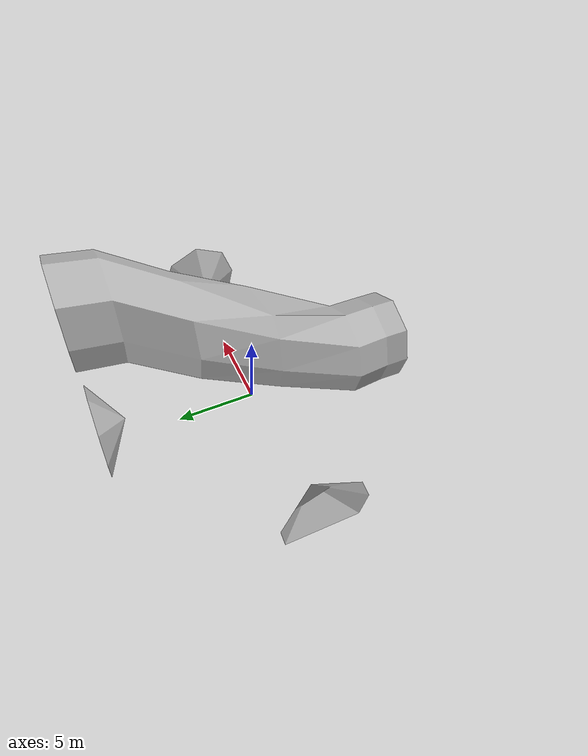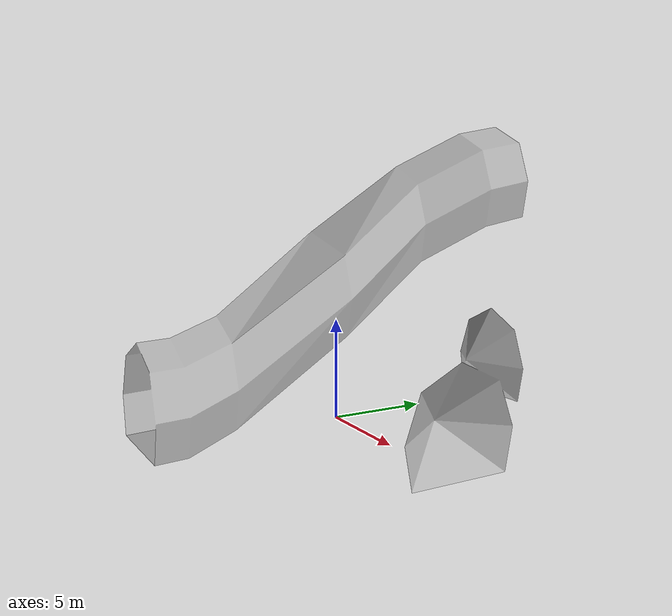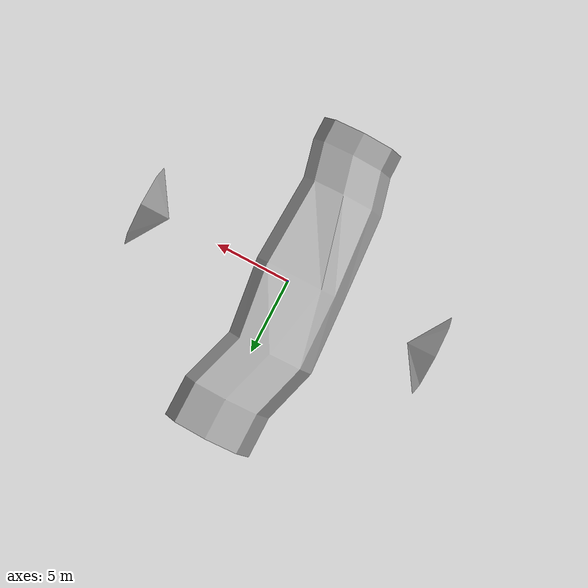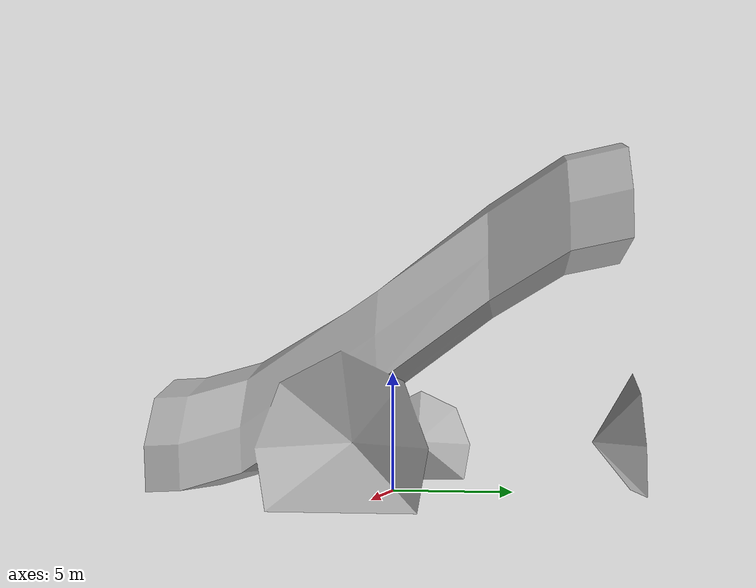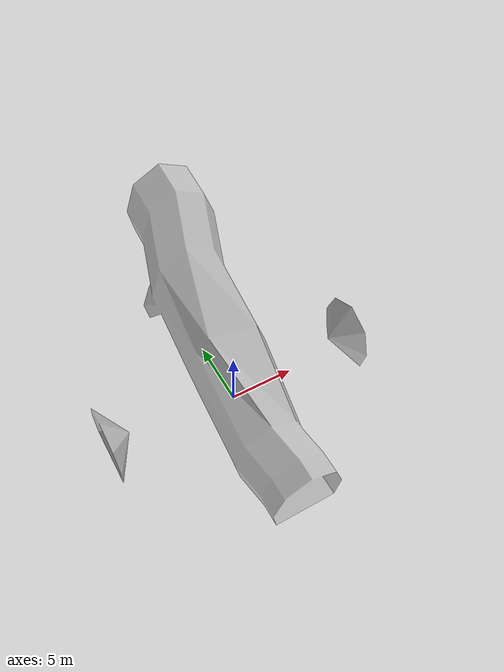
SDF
<?xml version="1.0" ?>
<sdf version="1.6">
  <model name="cave_tile_ramp">
    <static>true</static>
    <link name="link">
      <pose>0 0 0 1.570796 0 0</pose>
      <collision name="collision">
        <geometry>
          <mesh>
            <uri>model://cave_tile_ramp/meshes/cave_tile_ramp.obj</uri>
          </mesh>
        </geometry>
      </collision>
      <visual name="visual">
        <geometry>
          <mesh>
            <uri>model://cave_tile_ramp/meshes/cave_tile_ramp.obj</uri>
          </mesh>
        </geometry>
      </visual>
    </link>
  </model>
</sdf>
